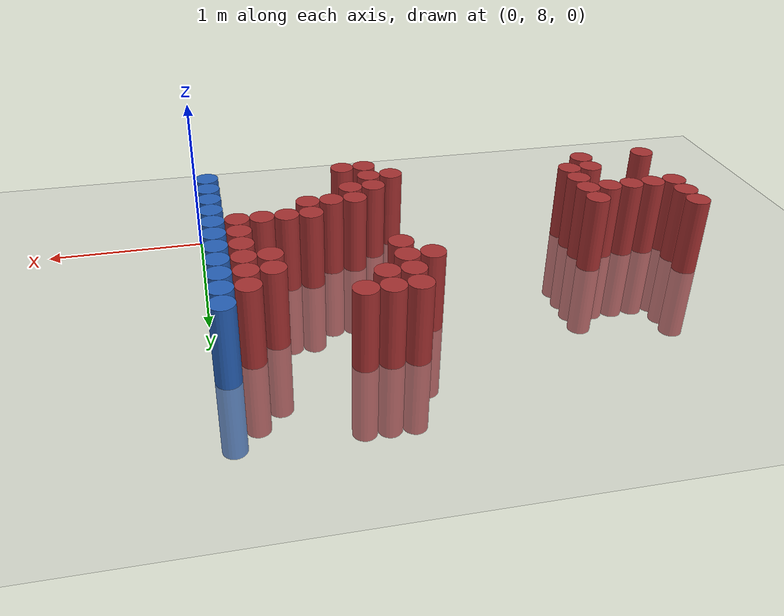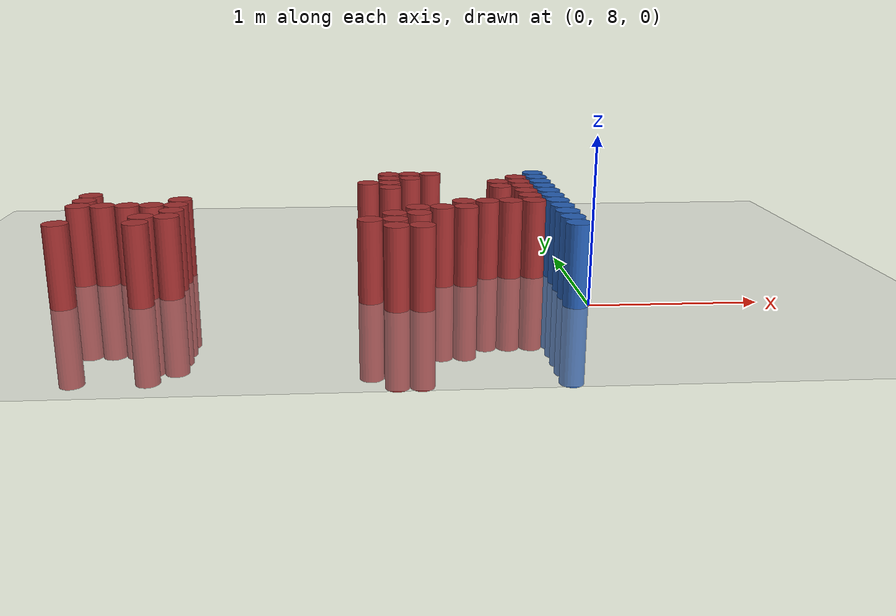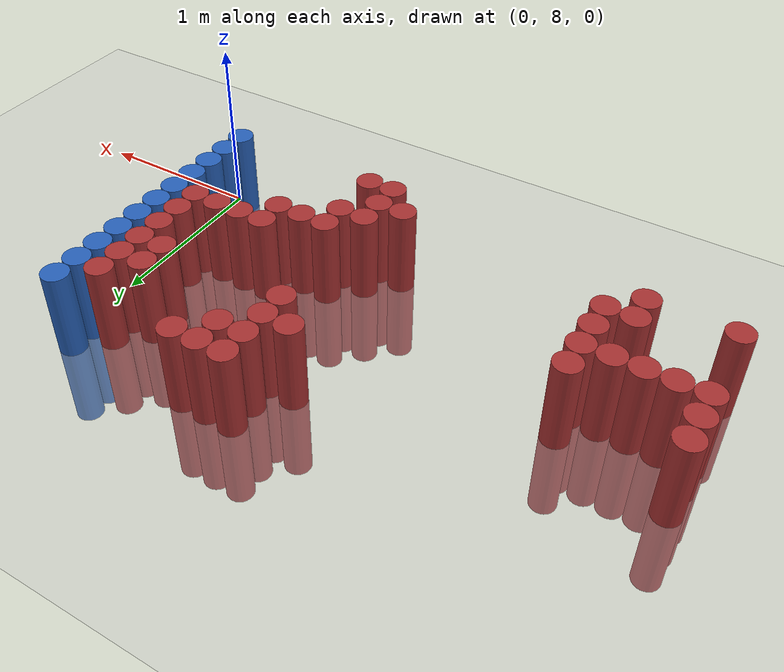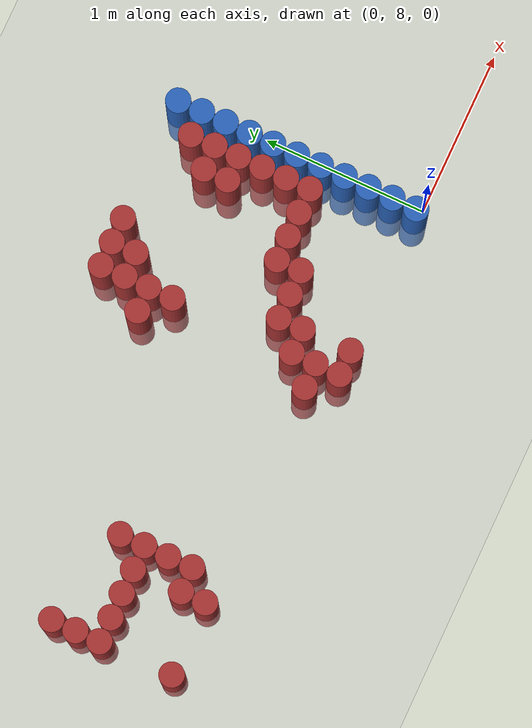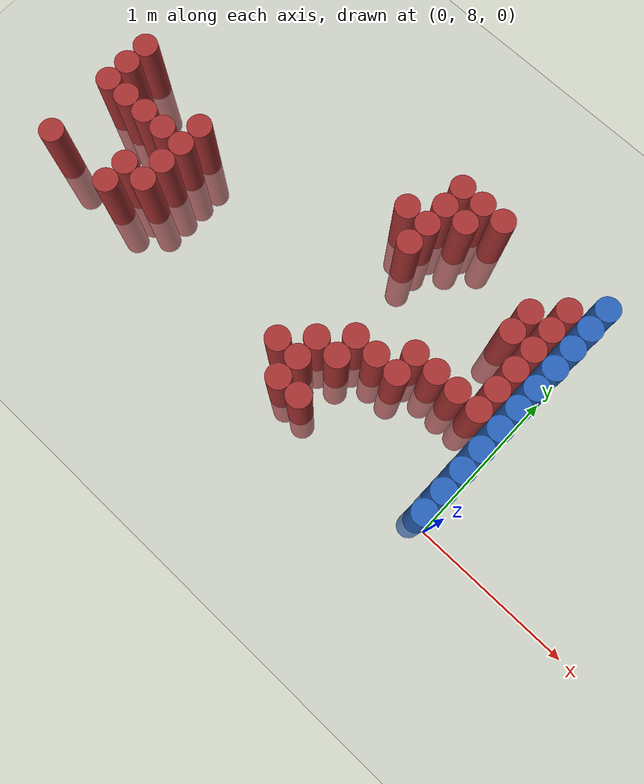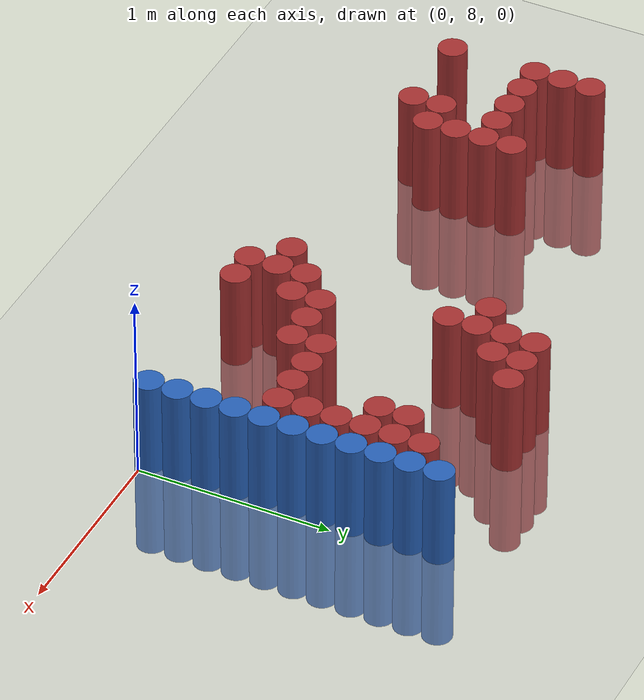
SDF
<sdf version="1.6">
 <world name="default">
  <model name="ground_plane">
   <static>1</static>
   <link name="link">
    <collision name="collision">
     <geometry><plane><normal>0 0 1</normal><size>100 100</size></plane></geometry>
     <surface><friction><ode><mu>100</mu><mu2>50</mu2></ode></friction></surface>
    </collision>
    <visual name="visual">
     <cast_shadows>0</cast_shadows>
     <geometry><plane><normal>0 0 1</normal><size>100 100</size></plane></geometry>
     <material>
      <script><uri>file://media/materials/scripts/gazebo.material</uri><name>Gazebo/Grey</name></script>
     </material>
    </visual>
   </link>
  </model>
  <model name="unit_cylinder_175">
   <static>1</static>
   <pose>-3.075000 8.175000 0.000000 0.000000 0.000000 0.000000</pose>
   <link name="link">
    <inertial>
     <mass>1</mass>
     <inertia><ixx>0.145833</ixx><ixy>0</ixy><ixz>0</ixz><iyy>0.145833</iyy><iyz>0</iyz><izz>0.125</izz></inertia>
    </inertial>
    <collision name="collision">
     <geometry><cylinder><radius>0.075000</radius><length>1</length></cylinder></geometry>
    </collision>
    <visual name="visual">
     <geometry><cylinder><radius>0.075000</radius><length>1</length></cylinder></geometry>
     <material>
      <ambient>0.648000 0.192000 0.192000 1</ambient>
      <diffuse>0.648000 0.192000 0.192000 1</diffuse>
     </material>
     <material>
      <script><name>Gazebo/Grey</name><uri>file://media/materials/scripts/gazebo.material</uri></script>
     </material>
    </visual>
   </link>
  </model>
  <model name="unit_cylinder_176">
   <static>1</static>
   <pose>-3.075000 8.625000 0.000000 0.000000 0.000000 0.000000</pose>
   <link name="link">
    <inertial>
     <mass>1</mass>
     <inertia><ixx>0.145833</ixx><ixy>0</ixy><ixz>0</ixz><iyy>0.145833</iyy><iyz>0</iyz><izz>0.125</izz></inertia>
    </inertial>
    <collision name="collision">
     <geometry><cylinder><radius>0.075000</radius><length>1</length></cylinder></geometry>
    </collision>
    <visual name="visual">
     <geometry><cylinder><radius>0.075000</radius><length>1</length></cylinder></geometry>
     <material>
      <ambient>0.648000 0.192000 0.192000 1</ambient>
      <diffuse>0.648000 0.192000 0.192000 1</diffuse>
     </material>
     <material>
      <script><name>Gazebo/Grey</name><uri>file://media/materials/scripts/gazebo.material</uri></script>
     </material>
    </visual>
   </link>
  </model>
  <model name="unit_cylinder_177">
   <static>1</static>
   <pose>-3.075000 8.775000 0.000000 0.000000 0.000000 0.000000</pose>
   <link name="link">
    <inertial>
     <mass>1</mass>
     <inertia><ixx>0.145833</ixx><ixy>0</ixy><ixz>0</ixz><iyy>0.145833</iyy><iyz>0</iyz><izz>0.125</izz></inertia>
    </inertial>
    <collision name="collision">
     <geometry><cylinder><radius>0.075000</radius><length>1</length></cylinder></geometry>
    </collision>
    <visual name="visual">
     <geometry><cylinder><radius>0.075000</radius><length>1</length></cylinder></geometry>
     <material>
      <ambient>0.648000 0.192000 0.192000 1</ambient>
      <diffuse>0.648000 0.192000 0.192000 1</diffuse>
     </material>
     <material>
      <script><name>Gazebo/Grey</name><uri>file://media/materials/scripts/gazebo.material</uri></script>
     </material>
    </visual>
   </link>
  </model>
  <model name="unit_cylinder_178">
   <static>1</static>
   <pose>-3.075000 8.925000 0.000000 0.000000 0.000000 0.000000</pose>
   <link name="link">
    <inertial>
     <mass>1</mass>
     <inertia><ixx>0.145833</ixx><ixy>0</ixy><ixz>0</ixz><iyy>0.145833</iyy><iyz>0</iyz><izz>0.125</izz></inertia>
    </inertial>
    <collision name="collision">
     <geometry><cylinder><radius>0.075000</radius><length>1</length></cylinder></geometry>
    </collision>
    <visual name="visual">
     <geometry><cylinder><radius>0.075000</radius><length>1</length></cylinder></geometry>
     <material>
      <ambient>0.648000 0.192000 0.192000 1</ambient>
      <diffuse>0.648000 0.192000 0.192000 1</diffuse>
     </material>
     <material>
      <script><name>Gazebo/Grey</name><uri>file://media/materials/scripts/gazebo.material</uri></script>
     </material>
    </visual>
   </link>
  </model>
  <model name="unit_cylinder_183">
   <static>1</static>
   <pose>-2.925000 8.625000 0.000000 0.000000 0.000000 0.000000</pose>
   <link name="link">
    <inertial>
     <mass>1</mass>
     <inertia><ixx>0.145833</ixx><ixy>0</ixy><ixz>0</ixz><iyy>0.145833</iyy><iyz>0</iyz><izz>0.125</izz></inertia>
    </inertial>
    <collision name="collision">
     <geometry><cylinder><radius>0.075000</radius><length>1</length></cylinder></geometry>
    </collision>
    <visual name="visual">
     <geometry><cylinder><radius>0.075000</radius><length>1</length></cylinder></geometry>
     <material>
      <ambient>0.648000 0.192000 0.192000 1</ambient>
      <diffuse>0.648000 0.192000 0.192000 1</diffuse>
     </material>
     <material>
      <script><name>Gazebo/Grey</name><uri>file://media/materials/scripts/gazebo.material</uri></script>
     </material>
    </visual>
   </link>
  </model>
  <model name="unit_cylinder_185">
   <static>1</static>
   <pose>-2.775000 8.625000 0.000000 0.000000 0.000000 0.000000</pose>
   <link name="link">
    <inertial>
     <mass>1</mass>
     <inertia><ixx>0.145833</ixx><ixy>0</ixy><ixz>0</ixz><iyy>0.145833</iyy><iyz>0</iyz><izz>0.125</izz></inertia>
    </inertial>
    <collision name="collision">
     <geometry><cylinder><radius>0.075000</radius><length>1</length></cylinder></geometry>
    </collision>
    <visual name="visual">
     <geometry><cylinder><radius>0.075000</radius><length>1</length></cylinder></geometry>
     <material>
      <ambient>0.648000 0.192000 0.192000 1</ambient>
      <diffuse>0.648000 0.192000 0.192000 1</diffuse>
     </material>
     <material>
      <script><name>Gazebo/Grey</name><uri>file://media/materials/scripts/gazebo.material</uri></script>
     </material>
    </visual>
   </link>
  </model>
  <model name="unit_cylinder_188">
   <static>1</static>
   <pose>-2.625000 8.175000 0.000000 0.000000 0.000000 0.000000</pose>
   <link name="link">
    <inertial>
     <mass>1</mass>
     <inertia><ixx>0.145833</ixx><ixy>0</ixy><ixz>0</ixz><iyy>0.145833</iyy><iyz>0</iyz><izz>0.125</izz></inertia>
    </inertial>
    <collision name="collision">
     <geometry><cylinder><radius>0.075000</radius><length>1</length></cylinder></geometry>
    </collision>
    <visual name="visual">
     <geometry><cylinder><radius>0.075000</radius><length>1</length></cylinder></geometry>
     <material>
      <ambient>0.648000 0.192000 0.192000 1</ambient>
      <diffuse>0.648000 0.192000 0.192000 1</diffuse>
     </material>
     <material>
      <script><name>Gazebo/Grey</name><uri>file://media/materials/scripts/gazebo.material</uri></script>
     </material>
    </visual>
   </link>
  </model>
  <model name="unit_cylinder_189">
   <static>1</static>
   <pose>-2.625000 8.325000 0.000000 0.000000 0.000000 0.000000</pose>
   <link name="link">
    <inertial>
     <mass>1</mass>
     <inertia><ixx>0.145833</ixx><ixy>0</ixy><ixz>0</ixz><iyy>0.145833</iyy><iyz>0</iyz><izz>0.125</izz></inertia>
    </inertial>
    <collision name="collision">
     <geometry><cylinder><radius>0.075000</radius><length>1</length></cylinder></geometry>
    </collision>
    <visual name="visual">
     <geometry><cylinder><radius>0.075000</radius><length>1</length></cylinder></geometry>
     <material>
      <ambient>0.648000 0.192000 0.192000 1</ambient>
      <diffuse>0.648000 0.192000 0.192000 1</diffuse>
     </material>
     <material>
      <script><name>Gazebo/Grey</name><uri>file://media/materials/scripts/gazebo.material</uri></script>
     </material>
    </visual>
   </link>
  </model>
  <model name="unit_cylinder_190">
   <static>1</static>
   <pose>-2.625000 8.625000 0.000000 0.000000 0.000000 0.000000</pose>
   <link name="link">
    <inertial>
     <mass>1</mass>
     <inertia><ixx>0.145833</ixx><ixy>0</ixy><ixz>0</ixz><iyy>0.145833</iyy><iyz>0</iyz><izz>0.125</izz></inertia>
    </inertial>
    <collision name="collision">
     <geometry><cylinder><radius>0.075000</radius><length>1</length></cylinder></geometry>
    </collision>
    <visual name="visual">
     <geometry><cylinder><radius>0.075000</radius><length>1</length></cylinder></geometry>
     <material>
      <ambient>0.648000 0.192000 0.192000 1</ambient>
      <diffuse>0.648000 0.192000 0.192000 1</diffuse>
     </material>
     <material>
      <script><name>Gazebo/Grey</name><uri>file://media/materials/scripts/gazebo.material</uri></script>
     </material>
    </visual>
   </link>
  </model>
  <model name="unit_cylinder_191">
   <static>1</static>
   <pose>-2.475000 8.325000 0.000000 0.000000 0.000000 0.000000</pose>
   <link name="link">
    <inertial>
     <mass>1</mass>
     <inertia><ixx>0.145833</ixx><ixy>0</ixy><ixz>0</ixz><iyy>0.145833</iyy><iyz>0</iyz><izz>0.125</izz></inertia>
    </inertial>
    <collision name="collision">
     <geometry><cylinder><radius>0.075000</radius><length>1</length></cylinder></geometry>
    </collision>
    <visual name="visual">
     <geometry><cylinder><radius>0.075000</radius><length>1</length></cylinder></geometry>
     <material>
      <ambient>0.648000 0.192000 0.192000 1</ambient>
      <diffuse>0.648000 0.192000 0.192000 1</diffuse>
     </material>
     <material>
      <script><name>Gazebo/Grey</name><uri>file://media/materials/scripts/gazebo.material</uri></script>
     </material>
    </visual>
   </link>
  </model>
  <model name="unit_cylinder_192">
   <static>1</static>
   <pose>-2.475000 8.475000 0.000000 0.000000 0.000000 0.000000</pose>
   <link name="link">
    <inertial>
     <mass>1</mass>
     <inertia><ixx>0.145833</ixx><ixy>0</ixy><ixz>0</ixz><iyy>0.145833</iyy><iyz>0</iyz><izz>0.125</izz></inertia>
    </inertial>
    <collision name="collision">
     <geometry><cylinder><radius>0.075000</radius><length>1</length></cylinder></geometry>
    </collision>
    <visual name="visual">
     <geometry><cylinder><radius>0.075000</radius><length>1</length></cylinder></geometry>
     <material>
      <ambient>0.648000 0.192000 0.192000 1</ambient>
      <diffuse>0.648000 0.192000 0.192000 1</diffuse>
     </material>
     <material>
      <script><name>Gazebo/Grey</name><uri>file://media/materials/scripts/gazebo.material</uri></script>
     </material>
    </visual>
   </link>
  </model>
  <model name="unit_cylinder_193">
   <static>1</static>
   <pose>-2.475000 8.625000 0.000000 0.000000 0.000000 0.000000</pose>
   <link name="link">
    <inertial>
     <mass>1</mass>
     <inertia><ixx>0.145833</ixx><ixy>0</ixy><ixz>0</ixz><iyy>0.145833</iyy><iyz>0</iyz><izz>0.125</izz></inertia>
    </inertial>
    <collision name="collision">
     <geometry><cylinder><radius>0.075000</radius><length>1</length></cylinder></geometry>
    </collision>
    <visual name="visual">
     <geometry><cylinder><radius>0.075000</radius><length>1</length></cylinder></geometry>
     <material>
      <ambient>0.648000 0.192000 0.192000 1</ambient>
      <diffuse>0.648000 0.192000 0.192000 1</diffuse>
     </material>
     <material>
      <script><name>Gazebo/Grey</name><uri>file://media/materials/scripts/gazebo.material</uri></script>
     </material>
    </visual>
   </link>
  </model>
  <model name="unit_cylinder_194">
   <static>1</static>
   <pose>-2.475000 8.775000 0.000000 0.000000 0.000000 0.000000</pose>
   <link name="link">
    <inertial>
     <mass>1</mass>
     <inertia><ixx>0.145833</ixx><ixy>0</ixy><ixz>0</ixz><iyy>0.145833</iyy><iyz>0</iyz><izz>0.125</izz></inertia>
    </inertial>
    <collision name="collision">
     <geometry><cylinder><radius>0.075000</radius><length>1</length></cylinder></geometry>
    </collision>
    <visual name="visual">
     <geometry><cylinder><radius>0.075000</radius><length>1</length></cylinder></geometry>
     <material>
      <ambient>0.648000 0.192000 0.192000 1</ambient>
      <diffuse>0.648000 0.192000 0.192000 1</diffuse>
     </material>
     <material>
      <script><name>Gazebo/Grey</name><uri>file://media/materials/scripts/gazebo.material</uri></script>
     </material>
    </visual>
   </link>
  </model>
  <model name="unit_cylinder_218">
   <static>1</static>
   <pose>-1.275000 8.175000 0.000000 0.000000 0.000000 0.000000</pose>
   <link name="link">
    <inertial>
     <mass>1</mass>
     <inertia><ixx>0.145833</ixx><ixy>0</ixy><ixz>0</ixz><iyy>0.145833</iyy><iyz>0</iyz><izz>0.125</izz></inertia>
    </inertial>
    <collision name="collision">
     <geometry><cylinder><radius>0.075000</radius><length>1</length></cylinder></geometry>
    </collision>
    <visual name="visual">
     <geometry><cylinder><radius>0.075000</radius><length>1</length></cylinder></geometry>
     <material>
      <ambient>0.648000 0.192000 0.192000 1</ambient>
      <diffuse>0.648000 0.192000 0.192000 1</diffuse>
     </material>
     <material>
      <script><name>Gazebo/Grey</name><uri>file://media/materials/scripts/gazebo.material</uri></script>
     </material>
    </visual>
   </link>
  </model>
  <model name="unit_cylinder_219">
   <static>1</static>
   <pose>-1.275000 9.225000 0.000000 0.000000 0.000000 0.000000</pose>
   <link name="link">
    <inertial>
     <mass>1</mass>
     <inertia><ixx>0.145833</ixx><ixy>0</ixy><ixz>0</ixz><iyy>0.145833</iyy><iyz>0</iyz><izz>0.125</izz></inertia>
    </inertial>
    <collision name="collision">
     <geometry><cylinder><radius>0.075000</radius><length>1</length></cylinder></geometry>
    </collision>
    <visual name="visual">
     <geometry><cylinder><radius>0.075000</radius><length>1</length></cylinder></geometry>
     <material>
      <ambient>0.648000 0.192000 0.192000 1</ambient>
      <diffuse>0.648000 0.192000 0.192000 1</diffuse>
     </material>
     <material>
      <script><name>Gazebo/Grey</name><uri>file://media/materials/scripts/gazebo.material</uri></script>
     </material>
    </visual>
   </link>
  </model>
  <model name="unit_cylinder_224">
   <static>1</static>
   <pose>-1.125000 8.025000 0.000000 0.000000 0.000000 0.000000</pose>
   <link name="link">
    <inertial>
     <mass>1</mass>
     <inertia><ixx>0.145833</ixx><ixy>0</ixy><ixz>0</ixz><iyy>0.145833</iyy><iyz>0</iyz><izz>0.125</izz></inertia>
    </inertial>
    <collision name="collision">
     <geometry><cylinder><radius>0.075000</radius><length>1</length></cylinder></geometry>
    </collision>
    <visual name="visual">
     <geometry><cylinder><radius>0.075000</radius><length>1</length></cylinder></geometry>
     <material>
      <ambient>0.648000 0.192000 0.192000 1</ambient>
      <diffuse>0.648000 0.192000 0.192000 1</diffuse>
     </material>
     <material>
      <script><name>Gazebo/Grey</name><uri>file://media/materials/scripts/gazebo.material</uri></script>
     </material>
    </visual>
   </link>
  </model>
  <model name="unit_cylinder_225">
   <static>1</static>
   <pose>-1.125000 8.175000 0.000000 0.000000 0.000000 0.000000</pose>
   <link name="link">
    <inertial>
     <mass>1</mass>
     <inertia><ixx>0.145833</ixx><ixy>0</ixy><ixz>0</ixz><iyy>0.145833</iyy><iyz>0</iyz><izz>0.125</izz></inertia>
    </inertial>
    <collision name="collision">
     <geometry><cylinder><radius>0.075000</radius><length>1</length></cylinder></geometry>
    </collision>
    <visual name="visual">
     <geometry><cylinder><radius>0.075000</radius><length>1</length></cylinder></geometry>
     <material>
      <ambient>0.648000 0.192000 0.192000 1</ambient>
      <diffuse>0.648000 0.192000 0.192000 1</diffuse>
     </material>
     <material>
      <script><name>Gazebo/Grey</name><uri>file://media/materials/scripts/gazebo.material</uri></script>
     </material>
    </visual>
   </link>
  </model>
  <model name="unit_cylinder_226">
   <static>1</static>
   <pose>-1.125000 8.325000 0.000000 0.000000 0.000000 0.000000</pose>
   <link name="link">
    <inertial>
     <mass>1</mass>
     <inertia><ixx>0.145833</ixx><ixy>0</ixy><ixz>0</ixz><iyy>0.145833</iyy><iyz>0</iyz><izz>0.125</izz></inertia>
    </inertial>
    <collision name="collision">
     <geometry><cylinder><radius>0.075000</radius><length>1</length></cylinder></geometry>
    </collision>
    <visual name="visual">
     <geometry><cylinder><radius>0.075000</radius><length>1</length></cylinder></geometry>
     <material>
      <ambient>0.648000 0.192000 0.192000 1</ambient>
      <diffuse>0.648000 0.192000 0.192000 1</diffuse>
     </material>
     <material>
      <script><name>Gazebo/Grey</name><uri>file://media/materials/scripts/gazebo.material</uri></script>
     </material>
    </visual>
   </link>
  </model>
  <model name="unit_cylinder_227">
   <static>1</static>
   <pose>-1.125000 9.075000 0.000000 0.000000 0.000000 0.000000</pose>
   <link name="link">
    <inertial>
     <mass>1</mass>
     <inertia><ixx>0.145833</ixx><ixy>0</ixy><ixz>0</ixz><iyy>0.145833</iyy><iyz>0</iyz><izz>0.125</izz></inertia>
    </inertial>
    <collision name="collision">
     <geometry><cylinder><radius>0.075000</radius><length>1</length></cylinder></geometry>
    </collision>
    <visual name="visual">
     <geometry><cylinder><radius>0.075000</radius><length>1</length></cylinder></geometry>
     <material>
      <ambient>0.648000 0.192000 0.192000 1</ambient>
      <diffuse>0.648000 0.192000 0.192000 1</diffuse>
     </material>
     <material>
      <script><name>Gazebo/Grey</name><uri>file://media/materials/scripts/gazebo.material</uri></script>
     </material>
    </visual>
   </link>
  </model>
  <model name="unit_cylinder_228">
   <static>1</static>
   <pose>-1.125000 9.225000 0.000000 0.000000 0.000000 0.000000</pose>
   <link name="link">
    <inertial>
     <mass>1</mass>
     <inertia><ixx>0.145833</ixx><ixy>0</ixy><ixz>0</ixz><iyy>0.145833</iyy><iyz>0</iyz><izz>0.125</izz></inertia>
    </inertial>
    <collision name="collision">
     <geometry><cylinder><radius>0.075000</radius><length>1</length></cylinder></geometry>
    </collision>
    <visual name="visual">
     <geometry><cylinder><radius>0.075000</radius><length>1</length></cylinder></geometry>
     <material>
      <ambient>0.648000 0.192000 0.192000 1</ambient>
      <diffuse>0.648000 0.192000 0.192000 1</diffuse>
     </material>
     <material>
      <script><name>Gazebo/Grey</name><uri>file://media/materials/scripts/gazebo.material</uri></script>
     </material>
    </visual>
   </link>
  </model>
  <model name="unit_cylinder_229">
   <static>1</static>
   <pose>-1.125000 9.375000 0.000000 0.000000 0.000000 0.000000</pose>
   <link name="link">
    <inertial>
     <mass>1</mass>
     <inertia><ixx>0.145833</ixx><ixy>0</ixy><ixz>0</ixz><iyy>0.145833</iyy><iyz>0</iyz><izz>0.125</izz></inertia>
    </inertial>
    <collision name="collision">
     <geometry><cylinder><radius>0.075000</radius><length>1</length></cylinder></geometry>
    </collision>
    <visual name="visual">
     <geometry><cylinder><radius>0.075000</radius><length>1</length></cylinder></geometry>
     <material>
      <ambient>0.648000 0.192000 0.192000 1</ambient>
      <diffuse>0.648000 0.192000 0.192000 1</diffuse>
     </material>
     <material>
      <script><name>Gazebo/Grey</name><uri>file://media/materials/scripts/gazebo.material</uri></script>
     </material>
    </visual>
   </link>
  </model>
  <model name="unit_cylinder_230">
   <static>1</static>
   <pose>-1.125000 9.525000 0.000000 0.000000 0.000000 0.000000</pose>
   <link name="link">
    <inertial>
     <mass>1</mass>
     <inertia><ixx>0.145833</ixx><ixy>0</ixy><ixz>0</ixz><iyy>0.145833</iyy><iyz>0</iyz><izz>0.125</izz></inertia>
    </inertial>
    <collision name="collision">
     <geometry><cylinder><radius>0.075000</radius><length>1</length></cylinder></geometry>
    </collision>
    <visual name="visual">
     <geometry><cylinder><radius>0.075000</radius><length>1</length></cylinder></geometry>
     <material>
      <ambient>0.648000 0.192000 0.192000 1</ambient>
      <diffuse>0.648000 0.192000 0.192000 1</diffuse>
     </material>
     <material>
      <script><name>Gazebo/Grey</name><uri>file://media/materials/scripts/gazebo.material</uri></script>
     </material>
    </visual>
   </link>
  </model>
  <model name="unit_cylinder_234">
   <static>1</static>
   <pose>-0.975000 8.025000 0.000000 0.000000 0.000000 0.000000</pose>
   <link name="link">
    <inertial>
     <mass>1</mass>
     <inertia><ixx>0.145833</ixx><ixy>0</ixy><ixz>0</ixz><iyy>0.145833</iyy><iyz>0</iyz><izz>0.125</izz></inertia>
    </inertial>
    <collision name="collision">
     <geometry><cylinder><radius>0.075000</radius><length>1</length></cylinder></geometry>
    </collision>
    <visual name="visual">
     <geometry><cylinder><radius>0.075000</radius><length>1</length></cylinder></geometry>
     <material>
      <ambient>0.648000 0.192000 0.192000 1</ambient>
      <diffuse>0.648000 0.192000 0.192000 1</diffuse>
     </material>
     <material>
      <script><name>Gazebo/Grey</name><uri>file://media/materials/scripts/gazebo.material</uri></script>
     </material>
    </visual>
   </link>
  </model>
  <model name="unit_cylinder_235">
   <static>1</static>
   <pose>-0.975000 8.325000 0.000000 0.000000 0.000000 0.000000</pose>
   <link name="link">
    <inertial>
     <mass>1</mass>
     <inertia><ixx>0.145833</ixx><ixy>0</ixy><ixz>0</ixz><iyy>0.145833</iyy><iyz>0</iyz><izz>0.125</izz></inertia>
    </inertial>
    <collision name="collision">
     <geometry><cylinder><radius>0.075000</radius><length>1</length></cylinder></geometry>
    </collision>
    <visual name="visual">
     <geometry><cylinder><radius>0.075000</radius><length>1</length></cylinder></geometry>
     <material>
      <ambient>0.648000 0.192000 0.192000 1</ambient>
      <diffuse>0.648000 0.192000 0.192000 1</diffuse>
     </material>
     <material>
      <script><name>Gazebo/Grey</name><uri>file://media/materials/scripts/gazebo.material</uri></script>
     </material>
    </visual>
   </link>
  </model>
  <model name="unit_cylinder_236">
   <static>1</static>
   <pose>-0.975000 8.475000 0.000000 0.000000 0.000000 0.000000</pose>
   <link name="link">
    <inertial>
     <mass>1</mass>
     <inertia><ixx>0.145833</ixx><ixy>0</ixy><ixz>0</ixz><iyy>0.145833</iyy><iyz>0</iyz><izz>0.125</izz></inertia>
    </inertial>
    <collision name="collision">
     <geometry><cylinder><radius>0.075000</radius><length>1</length></cylinder></geometry>
    </collision>
    <visual name="visual">
     <geometry><cylinder><radius>0.075000</radius><length>1</length></cylinder></geometry>
     <material>
      <ambient>0.648000 0.192000 0.192000 1</ambient>
      <diffuse>0.648000 0.192000 0.192000 1</diffuse>
     </material>
     <material>
      <script><name>Gazebo/Grey</name><uri>file://media/materials/scripts/gazebo.material</uri></script>
     </material>
    </visual>
   </link>
  </model>
  <model name="unit_cylinder_237">
   <static>1</static>
   <pose>-0.975000 9.375000 0.000000 0.000000 0.000000 0.000000</pose>
   <link name="link">
    <inertial>
     <mass>1</mass>
     <inertia><ixx>0.145833</ixx><ixy>0</ixy><ixz>0</ixz><iyy>0.145833</iyy><iyz>0</iyz><izz>0.125</izz></inertia>
    </inertial>
    <collision name="collision">
     <geometry><cylinder><radius>0.075000</radius><length>1</length></cylinder></geometry>
    </collision>
    <visual name="visual">
     <geometry><cylinder><radius>0.075000</radius><length>1</length></cylinder></geometry>
     <material>
      <ambient>0.648000 0.192000 0.192000 1</ambient>
      <diffuse>0.648000 0.192000 0.192000 1</diffuse>
     </material>
     <material>
      <script><name>Gazebo/Grey</name><uri>file://media/materials/scripts/gazebo.material</uri></script>
     </material>
    </visual>
   </link>
  </model>
  <model name="unit_cylinder_238">
   <static>1</static>
   <pose>-0.975000 9.525000 0.000000 0.000000 0.000000 0.000000</pose>
   <link name="link">
    <inertial>
     <mass>1</mass>
     <inertia><ixx>0.145833</ixx><ixy>0</ixy><ixz>0</ixz><iyy>0.145833</iyy><iyz>0</iyz><izz>0.125</izz></inertia>
    </inertial>
    <collision name="collision">
     <geometry><cylinder><radius>0.075000</radius><length>1</length></cylinder></geometry>
    </collision>
    <visual name="visual">
     <geometry><cylinder><radius>0.075000</radius><length>1</length></cylinder></geometry>
     <material>
      <ambient>0.648000 0.192000 0.192000 1</ambient>
      <diffuse>0.648000 0.192000 0.192000 1</diffuse>
     </material>
     <material>
      <script><name>Gazebo/Grey</name><uri>file://media/materials/scripts/gazebo.material</uri></script>
     </material>
    </visual>
   </link>
  </model>
  <model name="unit_cylinder_240">
   <static>1</static>
   <pose>-0.825000 8.475000 0.000000 0.000000 0.000000 0.000000</pose>
   <link name="link">
    <inertial>
     <mass>1</mass>
     <inertia><ixx>0.145833</ixx><ixy>0</ixy><ixz>0</ixz><iyy>0.145833</iyy><iyz>0</iyz><izz>0.125</izz></inertia>
    </inertial>
    <collision name="collision">
     <geometry><cylinder><radius>0.075000</radius><length>1</length></cylinder></geometry>
    </collision>
    <visual name="visual">
     <geometry><cylinder><radius>0.075000</radius><length>1</length></cylinder></geometry>
     <material>
      <ambient>0.648000 0.192000 0.192000 1</ambient>
      <diffuse>0.648000 0.192000 0.192000 1</diffuse>
     </material>
     <material>
      <script><name>Gazebo/Grey</name><uri>file://media/materials/scripts/gazebo.material</uri></script>
     </material>
    </visual>
   </link>
  </model>
  <model name="unit_cylinder_241">
   <static>1</static>
   <pose>-0.825000 9.525000 0.000000 0.000000 0.000000 0.000000</pose>
   <link name="link">
    <inertial>
     <mass>1</mass>
     <inertia><ixx>0.145833</ixx><ixy>0</ixy><ixz>0</ixz><iyy>0.145833</iyy><iyz>0</iyz><izz>0.125</izz></inertia>
    </inertial>
    <collision name="collision">
     <geometry><cylinder><radius>0.075000</radius><length>1</length></cylinder></geometry>
    </collision>
    <visual name="visual">
     <geometry><cylinder><radius>0.075000</radius><length>1</length></cylinder></geometry>
     <material>
      <ambient>0.648000 0.192000 0.192000 1</ambient>
      <diffuse>0.648000 0.192000 0.192000 1</diffuse>
     </material>
     <material>
      <script><name>Gazebo/Grey</name><uri>file://media/materials/scripts/gazebo.material</uri></script>
     </material>
    </visual>
   </link>
  </model>
  <model name="unit_cylinder_244">
   <static>1</static>
   <pose>-0.675000 8.475000 0.000000 0.000000 0.000000 0.000000</pose>
   <link name="link">
    <inertial>
     <mass>1</mass>
     <inertia><ixx>0.145833</ixx><ixy>0</ixy><ixz>0</ixz><iyy>0.145833</iyy><iyz>0</iyz><izz>0.125</izz></inertia>
    </inertial>
    <collision name="collision">
     <geometry><cylinder><radius>0.075000</radius><length>1</length></cylinder></geometry>
    </collision>
    <visual name="visual">
     <geometry><cylinder><radius>0.075000</radius><length>1</length></cylinder></geometry>
     <material>
      <ambient>0.648000 0.192000 0.192000 1</ambient>
      <diffuse>0.648000 0.192000 0.192000 1</diffuse>
     </material>
     <material>
      <script><name>Gazebo/Grey</name><uri>file://media/materials/scripts/gazebo.material</uri></script>
     </material>
    </visual>
   </link>
  </model>
  <model name="unit_cylinder_245">
   <static>1</static>
   <pose>-0.675000 8.625000 0.000000 0.000000 0.000000 0.000000</pose>
   <link name="link">
    <inertial>
     <mass>1</mass>
     <inertia><ixx>0.145833</ixx><ixy>0</ixy><ixz>0</ixz><iyy>0.145833</iyy><iyz>0</iyz><izz>0.125</izz></inertia>
    </inertial>
    <collision name="collision">
     <geometry><cylinder><radius>0.075000</radius><length>1</length></cylinder></geometry>
    </collision>
    <visual name="visual">
     <geometry><cylinder><radius>0.075000</radius><length>1</length></cylinder></geometry>
     <material>
      <ambient>0.648000 0.192000 0.192000 1</ambient>
      <diffuse>0.648000 0.192000 0.192000 1</diffuse>
     </material>
     <material>
      <script><name>Gazebo/Grey</name><uri>file://media/materials/scripts/gazebo.material</uri></script>
     </material>
    </visual>
   </link>
  </model>
  <model name="unit_cylinder_250">
   <static>1</static>
   <pose>-0.525000 8.625000 0.000000 0.000000 0.000000 0.000000</pose>
   <link name="link">
    <inertial>
     <mass>1</mass>
     <inertia><ixx>0.145833</ixx><ixy>0</ixy><ixz>0</ixz><iyy>0.145833</iyy><iyz>0</iyz><izz>0.125</izz></inertia>
    </inertial>
    <collision name="collision">
     <geometry><cylinder><radius>0.075000</radius><length>1</length></cylinder></geometry>
    </collision>
    <visual name="visual">
     <geometry><cylinder><radius>0.075000</radius><length>1</length></cylinder></geometry>
     <material>
      <ambient>0.648000 0.192000 0.192000 1</ambient>
      <diffuse>0.648000 0.192000 0.192000 1</diffuse>
     </material>
     <material>
      <script><name>Gazebo/Grey</name><uri>file://media/materials/scripts/gazebo.material</uri></script>
     </material>
    </visual>
   </link>
  </model>
  <model name="unit_cylinder_260">
   <static>1</static>
   <pose>-0.375000 8.625000 0.000000 0.000000 0.000000 0.000000</pose>
   <link name="link">
    <inertial>
     <mass>1</mass>
     <inertia><ixx>0.145833</ixx><ixy>0</ixy><ixz>0</ixz><iyy>0.145833</iyy><iyz>0</iyz><izz>0.125</izz></inertia>
    </inertial>
    <collision name="collision">
     <geometry><cylinder><radius>0.075000</radius><length>1</length></cylinder></geometry>
    </collision>
    <visual name="visual">
     <geometry><cylinder><radius>0.075000</radius><length>1</length></cylinder></geometry>
     <material>
      <ambient>0.648000 0.192000 0.192000 1</ambient>
      <diffuse>0.648000 0.192000 0.192000 1</diffuse>
     </material>
     <material>
      <script><name>Gazebo/Grey</name><uri>file://media/materials/scripts/gazebo.material</uri></script>
     </material>
    </visual>
   </link>
  </model>
  <model name="unit_cylinder_261">
   <static>1</static>
   <pose>-0.375000 9.075000 0.000000 0.000000 0.000000 0.000000</pose>
   <link name="link">
    <inertial>
     <mass>1</mass>
     <inertia><ixx>0.145833</ixx><ixy>0</ixy><ixz>0</ixz><iyy>0.145833</iyy><iyz>0</iyz><izz>0.125</izz></inertia>
    </inertial>
    <collision name="collision">
     <geometry><cylinder><radius>0.075000</radius><length>1</length></cylinder></geometry>
    </collision>
    <visual name="visual">
     <geometry><cylinder><radius>0.075000</radius><length>1</length></cylinder></geometry>
     <material>
      <ambient>0.648000 0.192000 0.192000 1</ambient>
      <diffuse>0.648000 0.192000 0.192000 1</diffuse>
     </material>
     <material>
      <script><name>Gazebo/Grey</name><uri>file://media/materials/scripts/gazebo.material</uri></script>
     </material>
    </visual>
   </link>
  </model>
  <model name="unit_cylinder_262">
   <static>1</static>
   <pose>-0.375000 9.225000 0.000000 0.000000 0.000000 0.000000</pose>
   <link name="link">
    <inertial>
     <mass>1</mass>
     <inertia><ixx>0.145833</ixx><ixy>0</ixy><ixz>0</ixz><iyy>0.145833</iyy><iyz>0</iyz><izz>0.125</izz></inertia>
    </inertial>
    <collision name="collision">
     <geometry><cylinder><radius>0.075000</radius><length>1</length></cylinder></geometry>
    </collision>
    <visual name="visual">
     <geometry><cylinder><radius>0.075000</radius><length>1</length></cylinder></geometry>
     <material>
      <ambient>0.648000 0.192000 0.192000 1</ambient>
      <diffuse>0.648000 0.192000 0.192000 1</diffuse>
     </material>
     <material>
      <script><name>Gazebo/Grey</name><uri>file://media/materials/scripts/gazebo.material</uri></script>
     </material>
    </visual>
   </link>
  </model>
  <model name="unit_cylinder_276">
   <static>1</static>
   <pose>-0.225000 8.625000 0.000000 0.000000 0.000000 0.000000</pose>
   <link name="link">
    <inertial>
     <mass>1</mass>
     <inertia><ixx>0.145833</ixx><ixy>0</ixy><ixz>0</ixz><iyy>0.145833</iyy><iyz>0</iyz><izz>0.125</izz></inertia>
    </inertial>
    <collision name="collision">
     <geometry><cylinder><radius>0.075000</radius><length>1</length></cylinder></geometry>
    </collision>
    <visual name="visual">
     <geometry><cylinder><radius>0.075000</radius><length>1</length></cylinder></geometry>
     <material>
      <ambient>0.648000 0.192000 0.192000 1</ambient>
      <diffuse>0.648000 0.192000 0.192000 1</diffuse>
     </material>
     <material>
      <script><name>Gazebo/Grey</name><uri>file://media/materials/scripts/gazebo.material</uri></script>
     </material>
    </visual>
   </link>
  </model>
  <model name="unit_cylinder_277">
   <static>1</static>
   <pose>-0.225000 8.775000 0.000000 0.000000 0.000000 0.000000</pose>
   <link name="link">
    <inertial>
     <mass>1</mass>
     <inertia><ixx>0.145833</ixx><ixy>0</ixy><ixz>0</ixz><iyy>0.145833</iyy><iyz>0</iyz><izz>0.125</izz></inertia>
    </inertial>
    <collision name="collision">
     <geometry><cylinder><radius>0.075000</radius><length>1</length></cylinder></geometry>
    </collision>
    <visual name="visual">
     <geometry><cylinder><radius>0.075000</radius><length>1</length></cylinder></geometry>
     <material>
      <ambient>0.648000 0.192000 0.192000 1</ambient>
      <diffuse>0.648000 0.192000 0.192000 1</diffuse>
     </material>
     <material>
      <script><name>Gazebo/Grey</name><uri>file://media/materials/scripts/gazebo.material</uri></script>
     </material>
    </visual>
   </link>
  </model>
  <model name="unit_cylinder_278">
   <static>1</static>
   <pose>-0.225000 8.925000 0.000000 0.000000 0.000000 0.000000</pose>
   <link name="link">
    <inertial>
     <mass>1</mass>
     <inertia><ixx>0.145833</ixx><ixy>0</ixy><ixz>0</ixz><iyy>0.145833</iyy><iyz>0</iyz><izz>0.125</izz></inertia>
    </inertial>
    <collision name="collision">
     <geometry><cylinder><radius>0.075000</radius><length>1</length></cylinder></geometry>
    </collision>
    <visual name="visual">
     <geometry><cylinder><radius>0.075000</radius><length>1</length></cylinder></geometry>
     <material>
      <ambient>0.648000 0.192000 0.192000 1</ambient>
      <diffuse>0.648000 0.192000 0.192000 1</diffuse>
     </material>
     <material>
      <script><name>Gazebo/Grey</name><uri>file://media/materials/scripts/gazebo.material</uri></script>
     </material>
    </visual>
   </link>
  </model>
  <model name="unit_cylinder_279">
   <static>1</static>
   <pose>-0.225000 9.075000 0.000000 0.000000 0.000000 0.000000</pose>
   <link name="link">
    <inertial>
     <mass>1</mass>
     <inertia><ixx>0.145833</ixx><ixy>0</ixy><ixz>0</ixz><iyy>0.145833</iyy><iyz>0</iyz><izz>0.125</izz></inertia>
    </inertial>
    <collision name="collision">
     <geometry><cylinder><radius>0.075000</radius><length>1</length></cylinder></geometry>
    </collision>
    <visual name="visual">
     <geometry><cylinder><radius>0.075000</radius><length>1</length></cylinder></geometry>
     <material>
      <ambient>0.648000 0.192000 0.192000 1</ambient>
      <diffuse>0.648000 0.192000 0.192000 1</diffuse>
     </material>
     <material>
      <script><name>Gazebo/Grey</name><uri>file://media/materials/scripts/gazebo.material</uri></script>
     </material>
    </visual>
   </link>
  </model>
  <model name="unit_cylinder_280">
   <static>1</static>
   <pose>-0.225000 9.225000 0.000000 0.000000 0.000000 0.000000</pose>
   <link name="link">
    <inertial>
     <mass>1</mass>
     <inertia><ixx>0.145833</ixx><ixy>0</ixy><ixz>0</ixz><iyy>0.145833</iyy><iyz>0</iyz><izz>0.125</izz></inertia>
    </inertial>
    <collision name="collision">
     <geometry><cylinder><radius>0.075000</radius><length>1</length></cylinder></geometry>
    </collision>
    <visual name="visual">
     <geometry><cylinder><radius>0.075000</radius><length>1</length></cylinder></geometry>
     <material>
      <ambient>0.648000 0.192000 0.192000 1</ambient>
      <diffuse>0.648000 0.192000 0.192000 1</diffuse>
     </material>
     <material>
      <script><name>Gazebo/Grey</name><uri>file://media/materials/scripts/gazebo.material</uri></script>
     </material>
    </visual>
   </link>
  </model>
  <model name="unit_cylinder_281">
   <static>1</static>
   <pose>-0.225000 9.375000 0.000000 0.000000 0.000000 0.000000</pose>
   <link name="link">
    <inertial>
     <mass>1</mass>
     <inertia><ixx>0.145833</ixx><ixy>0</ixy><ixz>0</ixz><iyy>0.145833</iyy><iyz>0</iyz><izz>0.125</izz></inertia>
    </inertial>
    <collision name="collision">
     <geometry><cylinder><radius>0.075000</radius><length>1</length></cylinder></geometry>
    </collision>
    <visual name="visual">
     <geometry><cylinder><radius>0.075000</radius><length>1</length></cylinder></geometry>
     <material>
      <ambient>0.648000 0.192000 0.192000 1</ambient>
      <diffuse>0.648000 0.192000 0.192000 1</diffuse>
     </material>
     <material>
      <script><name>Gazebo/Grey</name><uri>file://media/materials/scripts/gazebo.material</uri></script>
     </material>
    </visual>
   </link>
  </model>
  <model name="unit_cylinder_301">
   <static>1</static>
   <pose>-0.075000 8.025000 0.000000 0.000000 0.000000 0.000000</pose>
   <link name="link">
    <inertial>
     <mass>1</mass>
     <inertia><ixx>0.145833</ixx><ixy>0</ixy><ixz>0</ixz><iyy>0.145833</iyy><iyz>0</iyz><izz>0.125</izz></inertia>
    </inertial>
    <collision name="collision">
     <geometry><cylinder><radius>0.075000</radius><length>1</length></cylinder></geometry>
    </collision>
    <visual name="visual">
     <geometry><cylinder><radius>0.075000</radius><length>1</length></cylinder></geometry>
     <material>
      <ambient>0.152000 0.379000 0.720000 1</ambient>
      <diffuse>0.152000 0.379000 0.720000 1</diffuse>
     </material>
     <material>
      <script><name>Gazebo/Grey</name><uri>file://media/materials/scripts/gazebo.material</uri></script>
     </material>
    </visual>
   </link>
  </model>
  <model name="unit_cylinder_302">
   <static>1</static>
   <pose>-0.075000 8.175000 0.000000 0.000000 0.000000 0.000000</pose>
   <link name="link">
    <inertial>
     <mass>1</mass>
     <inertia><ixx>0.145833</ixx><ixy>0</ixy><ixz>0</ixz><iyy>0.145833</iyy><iyz>0</iyz><izz>0.125</izz></inertia>
    </inertial>
    <collision name="collision">
     <geometry><cylinder><radius>0.075000</radius><length>1</length></cylinder></geometry>
    </collision>
    <visual name="visual">
     <geometry><cylinder><radius>0.075000</radius><length>1</length></cylinder></geometry>
     <material>
      <ambient>0.152000 0.379000 0.720000 1</ambient>
      <diffuse>0.152000 0.379000 0.720000 1</diffuse>
     </material>
     <material>
      <script><name>Gazebo/Grey</name><uri>file://media/materials/scripts/gazebo.material</uri></script>
     </material>
    </visual>
   </link>
  </model>
  <model name="unit_cylinder_303">
   <static>1</static>
   <pose>-0.075000 8.325000 0.000000 0.000000 0.000000 0.000000</pose>
   <link name="link">
    <inertial>
     <mass>1</mass>
     <inertia><ixx>0.145833</ixx><ixy>0</ixy><ixz>0</ixz><iyy>0.145833</iyy><iyz>0</iyz><izz>0.125</izz></inertia>
    </inertial>
    <collision name="collision">
     <geometry><cylinder><radius>0.075000</radius><length>1</length></cylinder></geometry>
    </collision>
    <visual name="visual">
     <geometry><cylinder><radius>0.075000</radius><length>1</length></cylinder></geometry>
     <material>
      <ambient>0.152000 0.379000 0.720000 1</ambient>
      <diffuse>0.152000 0.379000 0.720000 1</diffuse>
     </material>
     <material>
      <script><name>Gazebo/Grey</name><uri>file://media/materials/scripts/gazebo.material</uri></script>
     </material>
    </visual>
   </link>
  </model>
  <model name="unit_cylinder_304">
   <static>1</static>
   <pose>-0.075000 8.475000 0.000000 0.000000 0.000000 0.000000</pose>
   <link name="link">
    <inertial>
     <mass>1</mass>
     <inertia><ixx>0.145833</ixx><ixy>0</ixy><ixz>0</ixz><iyy>0.145833</iyy><iyz>0</iyz><izz>0.125</izz></inertia>
    </inertial>
    <collision name="collision">
     <geometry><cylinder><radius>0.075000</radius><length>1</length></cylinder></geometry>
    </collision>
    <visual name="visual">
     <geometry><cylinder><radius>0.075000</radius><length>1</length></cylinder></geometry>
     <material>
      <ambient>0.152000 0.379000 0.720000 1</ambient>
      <diffuse>0.152000 0.379000 0.720000 1</diffuse>
     </material>
     <material>
      <script><name>Gazebo/Grey</name><uri>file://media/materials/scripts/gazebo.material</uri></script>
     </material>
    </visual>
   </link>
  </model>
  <model name="unit_cylinder_305">
   <static>1</static>
   <pose>-0.075000 8.625000 0.000000 0.000000 0.000000 0.000000</pose>
   <link name="link">
    <inertial>
     <mass>1</mass>
     <inertia><ixx>0.145833</ixx><ixy>0</ixy><ixz>0</ixz><iyy>0.145833</iyy><iyz>0</iyz><izz>0.125</izz></inertia>
    </inertial>
    <collision name="collision">
     <geometry><cylinder><radius>0.075000</radius><length>1</length></cylinder></geometry>
    </collision>
    <visual name="visual">
     <geometry><cylinder><radius>0.075000</radius><length>1</length></cylinder></geometry>
     <material>
      <ambient>0.152000 0.379000 0.720000 1</ambient>
      <diffuse>0.152000 0.379000 0.720000 1</diffuse>
     </material>
     <material>
      <script><name>Gazebo/Grey</name><uri>file://media/materials/scripts/gazebo.material</uri></script>
     </material>
    </visual>
   </link>
  </model>
  <model name="unit_cylinder_306">
   <static>1</static>
   <pose>-0.075000 8.775000 0.000000 0.000000 0.000000 0.000000</pose>
   <link name="link">
    <inertial>
     <mass>1</mass>
     <inertia><ixx>0.145833</ixx><ixy>0</ixy><ixz>0</ixz><iyy>0.145833</iyy><iyz>0</iyz><izz>0.125</izz></inertia>
    </inertial>
    <collision name="collision">
     <geometry><cylinder><radius>0.075000</radius><length>1</length></cylinder></geometry>
    </collision>
    <visual name="visual">
     <geometry><cylinder><radius>0.075000</radius><length>1</length></cylinder></geometry>
     <material>
      <ambient>0.152000 0.379000 0.720000 1</ambient>
      <diffuse>0.152000 0.379000 0.720000 1</diffuse>
     </material>
     <material>
      <script><name>Gazebo/Grey</name><uri>file://media/materials/scripts/gazebo.material</uri></script>
     </material>
    </visual>
   </link>
  </model>
  <model name="unit_cylinder_307">
   <static>1</static>
   <pose>-0.075000 8.925000 0.000000 0.000000 0.000000 0.000000</pose>
   <link name="link">
    <inertial>
     <mass>1</mass>
     <inertia><ixx>0.145833</ixx><ixy>0</ixy><ixz>0</ixz><iyy>0.145833</iyy><iyz>0</iyz><izz>0.125</izz></inertia>
    </inertial>
    <collision name="collision">
     <geometry><cylinder><radius>0.075000</radius><length>1</length></cylinder></geometry>
    </collision>
    <visual name="visual">
     <geometry><cylinder><radius>0.075000</radius><length>1</length></cylinder></geometry>
     <material>
      <ambient>0.152000 0.379000 0.720000 1</ambient>
      <diffuse>0.152000 0.379000 0.720000 1</diffuse>
     </material>
     <material>
      <script><name>Gazebo/Grey</name><uri>file://media/materials/scripts/gazebo.material</uri></script>
     </material>
    </visual>
   </link>
  </model>
  <model name="unit_cylinder_308">
   <static>1</static>
   <pose>-0.075000 9.075000 0.000000 0.000000 0.000000 0.000000</pose>
   <link name="link">
    <inertial>
     <mass>1</mass>
     <inertia><ixx>0.145833</ixx><ixy>0</ixy><ixz>0</ixz><iyy>0.145833</iyy><iyz>0</iyz><izz>0.125</izz></inertia>
    </inertial>
    <collision name="collision">
     <geometry><cylinder><radius>0.075000</radius><length>1</length></cylinder></geometry>
    </collision>
    <visual name="visual">
     <geometry><cylinder><radius>0.075000</radius><length>1</length></cylinder></geometry>
     <material>
      <ambient>0.152000 0.379000 0.720000 1</ambient>
      <diffuse>0.152000 0.379000 0.720000 1</diffuse>
     </material>
     <material>
      <script><name>Gazebo/Grey</name><uri>file://media/materials/scripts/gazebo.material</uri></script>
     </material>
    </visual>
   </link>
  </model>
  <model name="unit_cylinder_309">
   <static>1</static>
   <pose>-0.075000 9.225000 0.000000 0.000000 0.000000 0.000000</pose>
   <link name="link">
    <inertial>
     <mass>1</mass>
     <inertia><ixx>0.145833</ixx><ixy>0</ixy><ixz>0</ixz><iyy>0.145833</iyy><iyz>0</iyz><izz>0.125</izz></inertia>
    </inertial>
    <collision name="collision">
     <geometry><cylinder><radius>0.075000</radius><length>1</length></cylinder></geometry>
    </collision>
    <visual name="visual">
     <geometry><cylinder><radius>0.075000</radius><length>1</length></cylinder></geometry>
     <material>
      <ambient>0.152000 0.379000 0.720000 1</ambient>
      <diffuse>0.152000 0.379000 0.720000 1</diffuse>
     </material>
     <material>
      <script><name>Gazebo/Grey</name><uri>file://media/materials/scripts/gazebo.material</uri></script>
     </material>
    </visual>
   </link>
  </model>
  <model name="unit_cylinder_310">
   <static>1</static>
   <pose>-0.075000 9.375000 0.000000 0.000000 0.000000 0.000000</pose>
   <link name="link">
    <inertial>
     <mass>1</mass>
     <inertia><ixx>0.145833</ixx><ixy>0</ixy><ixz>0</ixz><iyy>0.145833</iyy><iyz>0</iyz><izz>0.125</izz></inertia>
    </inertial>
    <collision name="collision">
     <geometry><cylinder><radius>0.075000</radius><length>1</length></cylinder></geometry>
    </collision>
    <visual name="visual">
     <geometry><cylinder><radius>0.075000</radius><length>1</length></cylinder></geometry>
     <material>
      <ambient>0.152000 0.379000 0.720000 1</ambient>
      <diffuse>0.152000 0.379000 0.720000 1</diffuse>
     </material>
     <material>
      <script><name>Gazebo/Grey</name><uri>file://media/materials/scripts/gazebo.material</uri></script>
     </material>
    </visual>
   </link>
  </model>
  <model name="unit_cylinder_311">
   <static>1</static>
   <pose>-0.075000 9.525000 0.000000 0.000000 0.000000 0.000000</pose>
   <link name="link">
    <inertial>
     <mass>1</mass>
     <inertia><ixx>0.145833</ixx><ixy>0</ixy><ixz>0</ixz><iyy>0.145833</iyy><iyz>0</iyz><izz>0.125</izz></inertia>
    </inertial>
    <collision name="collision">
     <geometry><cylinder><radius>0.075000</radius><length>1</length></cylinder></geometry>
    </collision>
    <visual name="visual">
     <geometry><cylinder><radius>0.075000</radius><length>1</length></cylinder></geometry>
     <material>
      <ambient>0.152000 0.379000 0.720000 1</ambient>
      <diffuse>0.152000 0.379000 0.720000 1</diffuse>
     </material>
     <material>
      <script><name>Gazebo/Grey</name><uri>file://media/materials/scripts/gazebo.material</uri></script>
     </material>
    </visual>
   </link>
  </model>
 </world>
</sdf>
